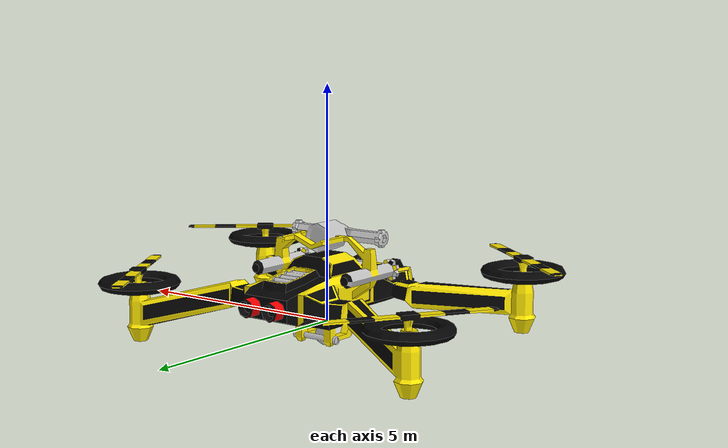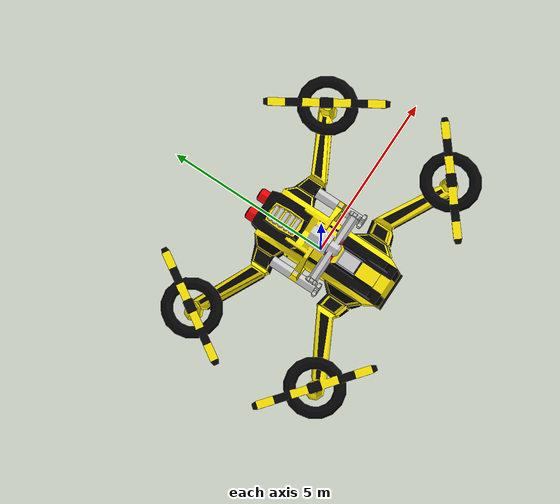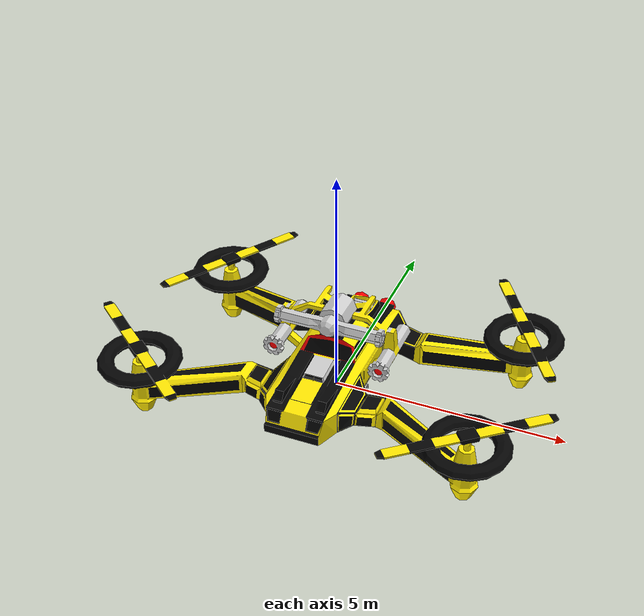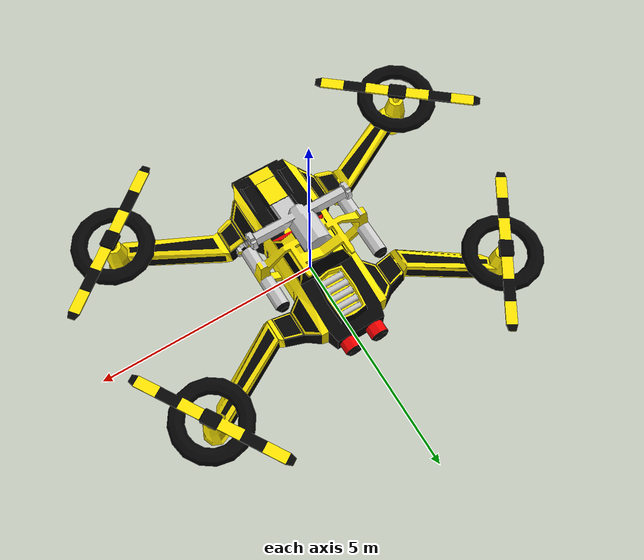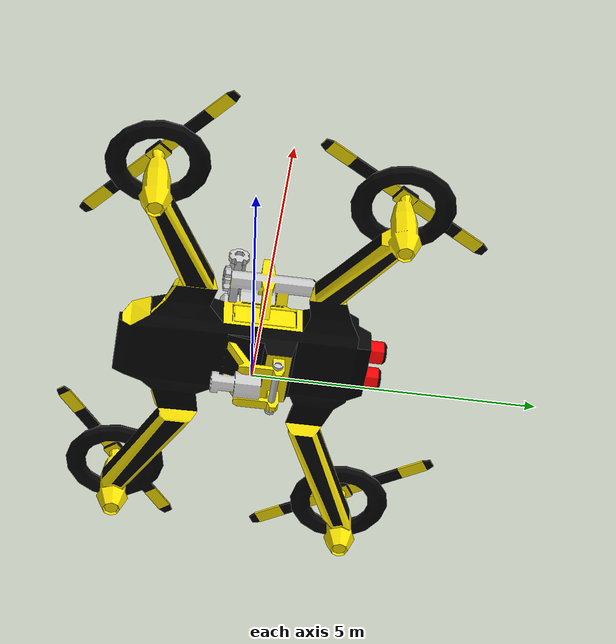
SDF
<?xml version="1.0"?>

<sdf version="1.4">
    <model name="drone">
        <static>true</static>
        <link name="drone_link">

            <visual name="drone_mesh">
                <geometry>
                    <mesh>
                        <uri>model://drone/meshes/model.dae</uri>
                    </mesh>
                </geometry>
            </visual>

            <collision name="drone_collison">
                <pose>-0.05 -0.05 0.824856</pose>
                <geometry>
                    <box>
                        <size>8.5 7 1.7344</size>
                    </box>
                </geometry>
            </collision>
        </link>
    </model>
</sdf>
